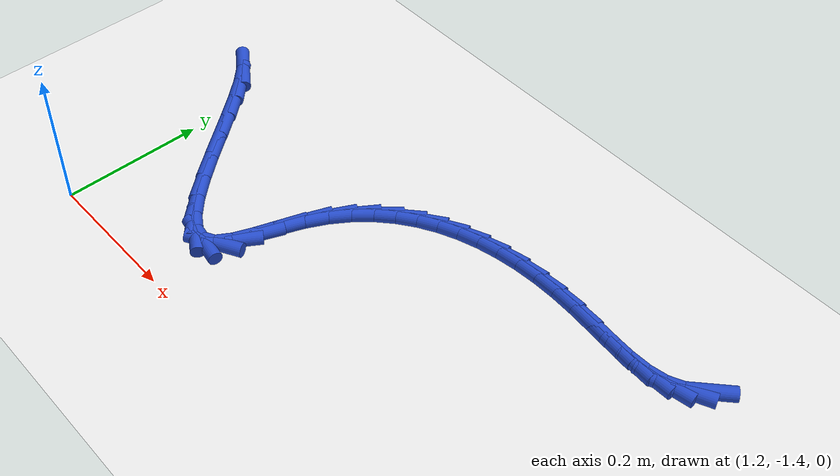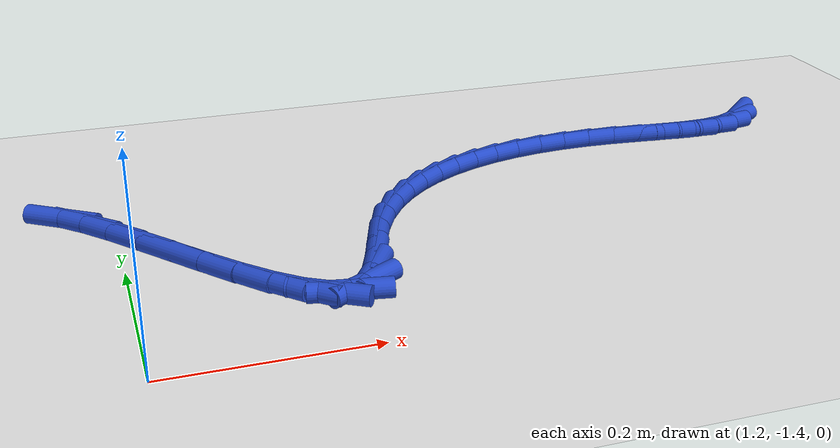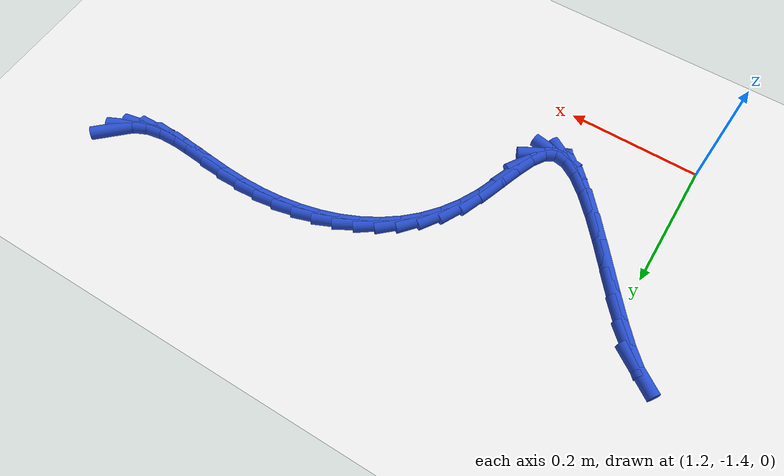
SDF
<sdf version="1.6">
 <world name="default">
  <model name="ground_plane">
   <static>1</static>
   <link name="link">
    <collision name="collision">
     <geometry><plane><normal>0 0 1</normal><size>100 100</size></plane></geometry>
     <surface><friction><ode><mu>100</mu><mu2>50</mu2></ode></friction></surface>
    </collision>
    <visual name="visual">
     <cast_shadows>0</cast_shadows>
     <geometry><plane><normal>0 0 1</normal><size>100 100</size></plane></geometry>
     <material>
      <script><uri>file://media/materials/scripts/gazebo.material</uri><name>Gazebo/WhiteGlow</name></script>
     </material>
    </visual>
   </link>
  </model>
  <model name="line">
   <link name="link_187">
    <pose>1.9661724444373563 -1.0111135281171775 0.01 0 1.57 0.7526839730829262</pose>
    <collision name="collision">
     <geometry><cylinder><radius>0.01</radius><length>0.08</length></cylinder></geometry>
    </collision>
    <visual name="visual">
     <material>
      <script><name>Gazebo/Blue</name><uri>file://media/materials/scripts/gazebo.material</uri></script>
     </material>
     <geometry><cylinder><radius>0.01</radius><length>0.08</length></cylinder></geometry>
    </visual>
   </link>
   <link name="link_188">
    <pose>1.9496724378087986 -1.026567803211803 0.01 0 1.57 0.43496542929290005</pose>
    <collision name="collision">
     <geometry><cylinder><radius>0.01</radius><length>0.08</length></cylinder></geometry>
    </collision>
    <visual name="visual">
     <material>
      <script><name>Gazebo/Blue</name><uri>file://media/materials/scripts/gazebo.material</uri></script>
     </material>
     <geometry><cylinder><radius>0.01</radius><length>0.08</length></cylinder></geometry>
    </visual>
   </link>
   <link name="link_189">
    <pose>1.9289119711904454 -1.0362140422175024 0.01 0 1.57 0.17930367618523133</pose>
    <collision name="collision">
     <geometry><cylinder><radius>0.01</radius><length>0.08</length></cylinder></geometry>
    </collision>
    <visual name="visual">
     <material>
      <script><name>Gazebo/Blue</name><uri>file://media/materials/scripts/gazebo.material</uri></script>
     </material>
     <geometry><cylinder><radius>0.01</radius><length>0.08</length></cylinder></geometry>
    </visual>
   </link>
   <link name="link_190">
    <pose>1.9042667726763542 -1.0406809903369731 0.01 0 1.57 0.02197053222990058</pose>
    <collision name="collision">
     <geometry><cylinder><radius>0.01</radius><length>0.08</length></cylinder></geometry>
    </collision>
    <visual name="visual">
     <material>
      <script><name>Gazebo/Blue</name><uri>file://media/materials/scripts/gazebo.material</uri></script>
     </material>
     <geometry><cylinder><radius>0.01</radius><length>0.08</length></cylinder></geometry>
    </visual>
   </link>
   <link name="link_191">
    <pose>1.876515955027151 -1.0412907886911251 0.01 0 1.57 -0.0637154600016742</pose>
    <collision name="collision">
     <geometry><cylinder><radius>0.01</radius><length>0.08</length></cylinder></geometry>
    </collision>
    <visual name="visual">
     <material>
      <script><name>Gazebo/Blue</name><uri>file://media/materials/scripts/gazebo.material</uri></script>
     </material>
     <geometry><cylinder><radius>0.01</radius><length>0.08</length></cylinder></geometry>
    </visual>
   </link>
   <link name="link_192">
    <pose>1.8464423903397131 -1.0393720404918412 0.01 0 1.57 -0.09833264672357127</pose>
    <collision name="collision">
     <geometry><cylinder><radius>0.01</radius><length>0.08</length></cylinder></geometry>
    </collision>
    <visual name="visual">
     <material>
      <script><name>Gazebo/Blue</name><uri>file://media/materials/scripts/gazebo.material</uri></script>
     </material>
     <geometry><cylinder><radius>0.01</radius><length>0.08</length></cylinder></geometry>
    </visual>
   </link>
   <link name="link_193">
    <pose>1.8148289507109179 -1.0362533489510046 0.01 0 1.57 -0.09210783029010453</pose>
    <collision name="collision">
     <geometry><cylinder><radius>0.01</radius><length>0.08</length></cylinder></geometry>
    </collision>
    <visual name="visual">
     <material>
      <script><name>Gazebo/Blue</name><uri>file://media/materials/scripts/gazebo.material</uri></script>
     </material>
     <geometry><cylinder><radius>0.01</radius><length>0.08</length></cylinder></geometry>
    </visual>
   </link>
   <link name="link_194">
    <pose>1.7824585082376432 -1.0332633172804984 0.01 0 1.57 -0.049014260570526866</pose>
    <collision name="collision">
     <geometry><cylinder><radius>0.01</radius><length>0.08</length></cylinder></geometry>
    </collision>
    <visual name="visual">
     <material>
      <script><name>Gazebo/Blue</name><uri>file://media/materials/scripts/gazebo.material</uri></script>
     </material>
     <geometry><cylinder><radius>0.01</radius><length>0.08</length></cylinder></geometry>
    </visual>
   </link>
   <link name="link_195">
    <pose>1.7500873907398473 -1.0316753990851015 0.01 0 1.57 0.01239894894885944</pose>
    <collision name="collision">
     <geometry><cylinder><radius>0.01</radius><length>0.08</length></cylinder></geometry>
    </collision>
    <visual name="visual">
     <material>
      <script><name>Gazebo/Blue</name><uri>file://media/materials/scripts/gazebo.material</uri></script>
     </material>
     <geometry><cylinder><radius>0.01</radius><length>0.08</length></cylinder></geometry>
    </visual>
   </link>
   <link name="link_196">
    <pose>1.718139095828572 -1.0320715446632571 0.01 0 1.57 0.07934056130136878</pose>
    <collision name="collision">
     <geometry><cylinder><radius>0.01</radius><length>0.08</length></cylinder></geometry>
    </collision>
    <visual name="visual">
     <material>
      <script><name>Gazebo/Blue</name><uri>file://media/materials/scripts/gazebo.material</uri></script>
     </material>
     <geometry><cylinder><radius>0.01</radius><length>0.08</length></cylinder></geometry>
    </visual>
   </link>
   <link name="link_197">
    <pose>1.6868102848692539 -1.03456241892635 0.01 0 1.57 0.15240200058641143</pose>
    <collision name="collision">
     <geometry><cylinder><radius>0.01</radius><length>0.08</length></cylinder></geometry>
    </collision>
    <visual name="visual">
     <material>
      <script><name>Gazebo/Blue</name><uri>file://media/materials/scripts/gazebo.material</uri></script>
     </material>
     <geometry><cylinder><radius>0.01</radius><length>0.08</length></cylinder></geometry>
    </visual>
   </link>
   <link name="link_198">
    <pose>1.656293255480133 -1.0392496204644632 0.01 0 1.57 0.2324035165370441</pose>
    <collision name="collision">
     <geometry><cylinder><radius>0.01</radius><length>0.08</length></cylinder></geometry>
    </collision>
    <visual name="visual">
     <material>
      <script><name>Gazebo/Blue</name><uri>file://media/materials/scripts/gazebo.material</uri></script>
     </material>
     <geometry><cylinder><radius>0.01</radius><length>0.08</length></cylinder></geometry>
    </visual>
   </link>
   <link name="link_199">
    <pose>1.6267803052794525 -1.0462347478676814 0.01 0 1.57 0.32002671128222027</pose>
    <collision name="collision">
     <geometry><cylinder><radius>0.01</radius><length>0.08</length></cylinder></geometry>
    </collision>
    <visual name="visual">
     <material>
      <script><name>Gazebo/Blue</name><uri>file://media/materials/scripts/gazebo.material</uri></script>
     </material>
     <geometry><cylinder><radius>0.01</radius><length>0.08</length></cylinder></geometry>
    </visual>
   </link>
   <link name="link_200">
    <pose>1.5984637318854544 -1.055619399726089 0.01 0 1.57 0.41567298442292105</pose>
    <collision name="collision">
     <geometry><cylinder><radius>0.01</radius><length>0.08</length></cylinder></geometry>
    </collision>
    <visual name="visual">
     <material>
      <script><name>Gazebo/Blue</name><uri>file://media/materials/scripts/gazebo.material</uri></script>
     </material>
     <geometry><cylinder><radius>0.01</radius><length>0.08</length></cylinder></geometry>
    </visual>
   </link>
   <link name="link_201">
    <pose>1.5715358329163795 -1.067505174629769 0.01 0 1.57 0.5192810778604267</pose>
    <collision name="collision">
     <geometry><cylinder><radius>0.01</radius><length>0.08</length></cylinder></geometry>
    </collision>
    <visual name="visual">
     <material>
      <script><name>Gazebo/Blue</name><uri>file://media/materials/scripts/gazebo.material</uri></script>
     </material>
     <geometry><cylinder><radius>0.01</radius><length>0.08</length></cylinder></geometry>
    </visual>
   </link>
   <link name="link_202">
    <pose>1.5461889059904692 -1.0819936711688063 0.01 0 1.57 0.6301361434688498</pose>
    <collision name="collision">
     <geometry><cylinder><radius>0.01</radius><length>0.08</length></cylinder></geometry>
    </collision>
    <visual name="visual">
     <material>
      <script><name>Gazebo/Blue</name><uri>file://media/materials/scripts/gazebo.material</uri></script>
     </material>
     <geometry><cylinder><radius>0.01</radius><length>0.08</length></cylinder></geometry>
    </visual>
   </link>
   <link name="link_203">
    <pose>1.5226152487259659 -1.0991864879332847 0.01 0 1.57 0.74673737895727</pose>
    <collision name="collision">
     <geometry><cylinder><radius>0.01</radius><length>0.08</length></cylinder></geometry>
    </collision>
    <visual name="visual">
     <material>
      <script><name>Gazebo/Blue</name><uri>file://media/materials/scripts/gazebo.material</uri></script>
     </material>
     <geometry><cylinder><radius>0.01</radius><length>0.08</length></cylinder></geometry>
    </visual>
   </link>
   <link name="link_204">
    <pose>1.501007158741111 -1.119185223513288 0.01 0 1.57 0.8668116562349828</pose>
    <collision name="collision">
     <geometry><cylinder><radius>0.01</radius><length>0.08</length></cylinder></geometry>
    </collision>
    <visual name="visual">
     <material>
      <script><name>Gazebo/Blue</name><uri>file://media/materials/scripts/gazebo.material</uri></script>
     </material>
     <geometry><cylinder><radius>0.01</radius><length>0.08</length></cylinder></geometry>
    </visual>
   </link>
   <link name="link_205">
    <pose>1.481556933654146 -1.1420914764989003 0.01 0 1.57 0.9875330187824025</pose>
    <collision name="collision">
     <geometry><cylinder><radius>0.01</radius><length>0.08</length></cylinder></geometry>
    </collision>
    <visual name="visual">
     <material>
      <script><name>Gazebo/Blue</name><uri>file://media/materials/scripts/gazebo.material</uri></script>
     </material>
     <geometry><cylinder><radius>0.01</radius><length>0.08</length></cylinder></geometry>
    </visual>
   </link>
   <link name="link_206">
    <pose>1.4644568710833135 -1.168006845480206 0.01 0 1.57 1.1059213173821676</pose>
    <collision name="collision">
     <geometry><cylinder><radius>0.01</radius><length>0.08</length></cylinder></geometry>
    </collision>
    <visual name="visual">
     <material>
      <script><name>Gazebo/Blue</name><uri>file://media/materials/scripts/gazebo.material</uri></script>
     </material>
     <geometry><cylinder><radius>0.01</radius><length>0.08</length></cylinder></geometry>
    </visual>
   </link>
   <link name="link_207">
    <pose>1.4498992686468548 -1.1970329290472885 0.01 0 1.57 1.2077179431510352</pose>
    <collision name="collision">
     <geometry><cylinder><radius>0.01</radius><length>0.08</length></cylinder></geometry>
    </collision>
    <visual name="visual">
     <material>
      <script><name>Gazebo/Blue</name><uri>file://media/materials/scripts/gazebo.material</uri></script>
     </material>
     <geometry><cylinder><radius>0.01</radius><length>0.08</length></cylinder></geometry>
    </visual>
   </link>
   <link name="link_208">
    <pose>1.4378486106880275 -1.2287517421017136 0.01 0 1.57 1.2434688288762912</pose>
    <collision name="collision">
     <geometry><cylinder><radius>0.01</radius><length>0.08</length></cylinder></geometry>
    </collision>
    <visual name="visual">
     <material>
      <script><name>Gazebo/Blue</name><uri>file://media/materials/scripts/gazebo.material</uri></script>
     </material>
     <geometry><cylinder><radius>0.01</radius><length>0.08</length></cylinder></geometry>
    </visual>
   </link>
   <link name="link_209">
    <pose>1.4271630989781865 -1.2602221525541872 0.01 0 1.57 1.1968527395463313</pose>
    <collision name="collision">
     <geometry><cylinder><radius>0.01</radius><length>0.08</length></cylinder></geometry>
    </collision>
    <visual name="visual">
     <material>
      <script><name>Gazebo/Blue</name><uri>file://media/materials/scripts/gazebo.material</uri></script>
     </material>
     <geometry><cylinder><radius>0.01</radius><length>0.08</length></cylinder></geometry>
    </visual>
   </link>
   <link name="link_210">
    <pose>1.416365602120683 -1.2877382193097633 0.01 0 1.57 1.0130329374356883</pose>
    <collision name="collision">
     <geometry><cylinder><radius>0.01</radius><length>0.08</length></cylinder></geometry>
    </collision>
    <visual name="visual">
     <material>
      <script><name>Gazebo/Blue</name><uri>file://media/materials/scripts/gazebo.material</uri></script>
     </material>
     <geometry><cylinder><radius>0.01</radius><length>0.08</length></cylinder></geometry>
    </visual>
   </link>
   <link name="link_211">
    <pose>1.4039789140829193 -1.307593831048033 0.01 0 1.57 0.5114447973572269</pose>
    <collision name="collision">
     <geometry><cylinder><radius>0.01</radius><length>0.08</length></cylinder></geometry>
    </collision>
    <visual name="visual">
     <material>
      <script><name>Gazebo/Blue</name><uri>file://media/materials/scripts/gazebo.material</uri></script>
     </material>
     <geometry><cylinder><radius>0.01</radius><length>0.08</length></cylinder></geometry>
    </visual>
   </link>
   <link name="link_212">
    <pose>1.3885819785186289 -1.3162354704495411 0.01 0 1.57 -0.170935600168335</pose>
    <collision name="collision">
     <geometry><cylinder><radius>0.01</radius><length>0.08</length></cylinder></geometry>
    </collision>
    <visual name="visual">
     <material>
      <script><name>Gazebo/Blue</name><uri>file://media/materials/scripts/gazebo.material</uri></script>
     </material>
     <geometry><cylinder><radius>0.01</radius><length>0.08</length></cylinder></geometry>
    </visual>
   </link>
   <link name="link_213">
    <pose>1.3698158559974716 -1.3129960596440935 0.01 0 1.57 -0.5500048064754537</pose>
    <collision name="collision">
     <geometry><cylinder><radius>0.01</radius><length>0.08</length></cylinder></geometry>
    </collision>
    <visual name="visual">
     <material>
      <script><name>Gazebo/Blue</name><uri>file://media/materials/scripts/gazebo.material</uri></script>
     </material>
     <geometry><cylinder><radius>0.01</radius><length>0.08</length></cylinder></geometry>
    </visual>
   </link>
   <link name="link_214">
    <pose>1.3482700664914709 -1.2997860812860902 0.01 0 1.57 -0.7292407337053932</pose>
    <collision name="collision">
     <geometry><cylinder><radius>0.01</radius><length>0.08</length></cylinder></geometry>
    </collision>
    <visual name="visual">
     <material>
      <script><name>Gazebo/Blue</name><uri>file://media/materials/scripts/gazebo.material</uri></script>
     </material>
     <geometry><cylinder><radius>0.01</radius><length>0.08</length></cylinder></geometry>
    </visual>
   </link>
   <link name="link_215">
    <pose>1.324567456836665 -1.2786065880731836 0.01 0 1.57 -0.8218693230231612</pose>
    <collision name="collision">
     <geometry><cylinder><radius>0.01</radius><length>0.08</length></cylinder></geometry>
    </collision>
    <visual name="visual">
     <material>
      <script><name>Gazebo/Blue</name><uri>file://media/materials/scripts/gazebo.material</uri></script>
     </material>
     <geometry><cylinder><radius>0.01</radius><length>0.08</length></cylinder></geometry>
    </visual>
   </link>
   <link name="link_216">
    <pose>1.2993308738690936 -1.2514586327030277 0.01 0 1.57 -0.871932977186916</pose>
    <collision name="collision">
     <geometry><cylinder><radius>0.01</radius><length>0.08</length></cylinder></geometry>
    </collision>
    <visual name="visual">
     <material>
      <script><name>Gazebo/Blue</name><uri>file://media/materials/scripts/gazebo.material</uri></script>
     </material>
     <geometry><cylinder><radius>0.01</radius><length>0.08</length></cylinder></geometry>
    </visual>
   </link>
   <link name="link_217">
    <pose>1.273183164424793 -1.2203432678732733 0.01 0 1.57 -0.896597296936591</pose>
    <collision name="collision">
     <geometry><cylinder><radius>0.01</radius><length>0.08</length></cylinder></geometry>
    </collision>
    <visual name="visual">
     <material>
      <script><name>Gazebo/Blue</name><uri>file://media/materials/scripts/gazebo.material</uri></script>
     </material>
     <geometry><cylinder><radius>0.01</radius><length>0.08</length></cylinder></geometry>
    </visual>
   </link>
   <link name="link_218">
    <pose>1.2467471753398025 -1.1872615462815737 0.01 0 1.57 -0.902289497881209</pose>
    <collision name="collision">
     <geometry><cylinder><radius>0.01</radius><length>0.08</length></cylinder></geometry>
    </collision>
    <visual name="visual">
     <material>
      <script><name>Gazebo/Blue</name><uri>file://media/materials/scripts/gazebo.material</uri></script>
     </material>
     <geometry><cylinder><radius>0.01</radius><length>0.08</length></cylinder></geometry>
    </visual>
   </link>
   <link name="link_219">
    <pose>1.2206457534501607 -1.1542145206255816 0.01 0 1.57 -0.8895033703328598</pose>
    <collision name="collision">
     <geometry><cylinder><radius>0.01</radius><length>0.08</length></cylinder></geometry>
    </collision>
    <visual name="visual">
     <material>
      <script><name>Gazebo/Blue</name><uri>file://media/materials/scripts/gazebo.material</uri></script>
     </material>
     <geometry><cylinder><radius>0.01</radius><length>0.08</length></cylinder></geometry>
    </visual>
   </link>
   <link name="link_220">
    <pose>1.1955017455919064 -1.1232032436029495 0.01 0 1.57 -0.8527840825486085</pose>
    <collision name="collision">
     <geometry><cylinder><radius>0.01</radius><length>0.08</length></cylinder></geometry>
    </collision>
    <visual name="visual">
     <material>
      <script><name>Gazebo/Blue</name><uri>file://media/materials/scripts/gazebo.material</uri></script>
     </material>
     <geometry><cylinder><radius>0.01</radius><length>0.08</length></cylinder></geometry>
    </visual>
   </link>
   <link name="link_221">
    <pose>1.1719379986010778 -1.0962287679113303 0.01 0 1.57 -0.7753737927433267</pose>
    <collision name="collision">
     <geometry><cylinder><radius>0.01</radius><length>0.08</length></cylinder></geometry>
    </collision>
    <visual name="visual">
     <material>
      <script><name>Gazebo/Blue</name><uri>file://media/materials/scripts/gazebo.material</uri></script>
     </material>
     <geometry><cylinder><radius>0.01</radius><length>0.08</length></cylinder></geometry>
    </visual>
   </link>
   <link name="link_222">
    <pose>1.1505773593137136 -1.0752921462483767 0.01 0 1.57 -0.6079481842757911</pose>
    <collision name="collision">
     <geometry><cylinder><radius>0.01</radius><length>0.08</length></cylinder></geometry>
    </collision>
    <visual name="visual">
     <material>
      <script><name>Gazebo/Blue</name><uri>file://media/materials/scripts/gazebo.material</uri></script>
     </material>
     <geometry><cylinder><radius>0.01</radius><length>0.08</length></cylinder></geometry>
    </visual>
   </link>
  </model>
 </world>
</sdf>
